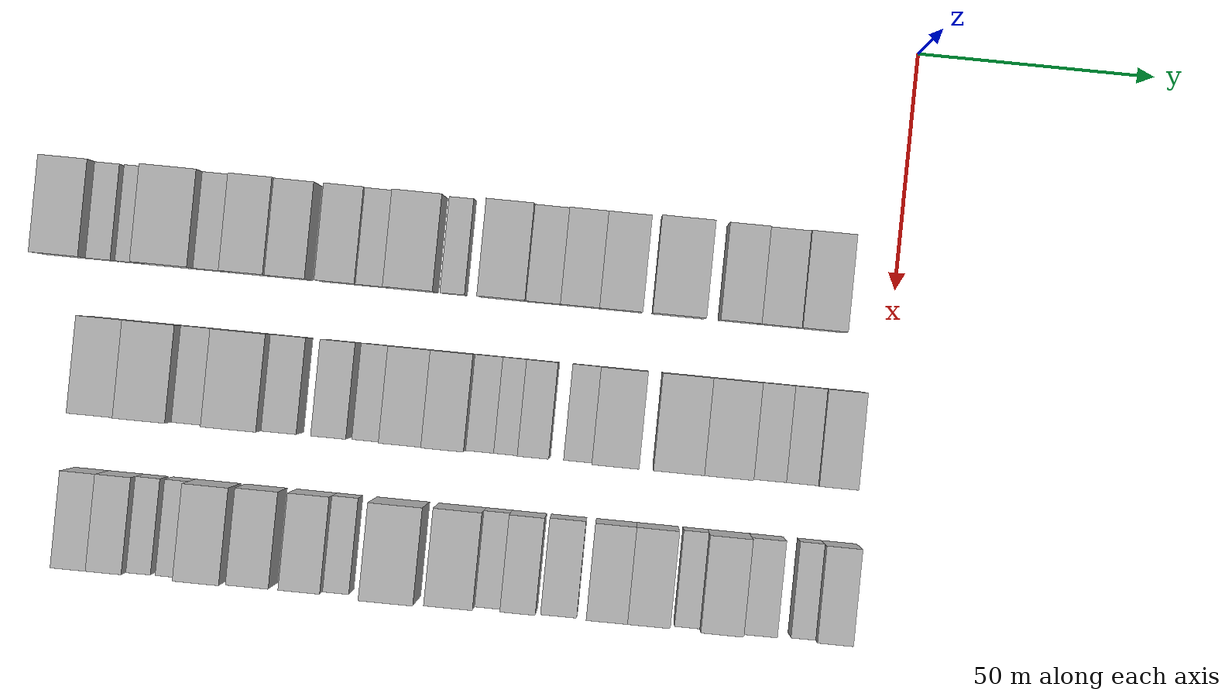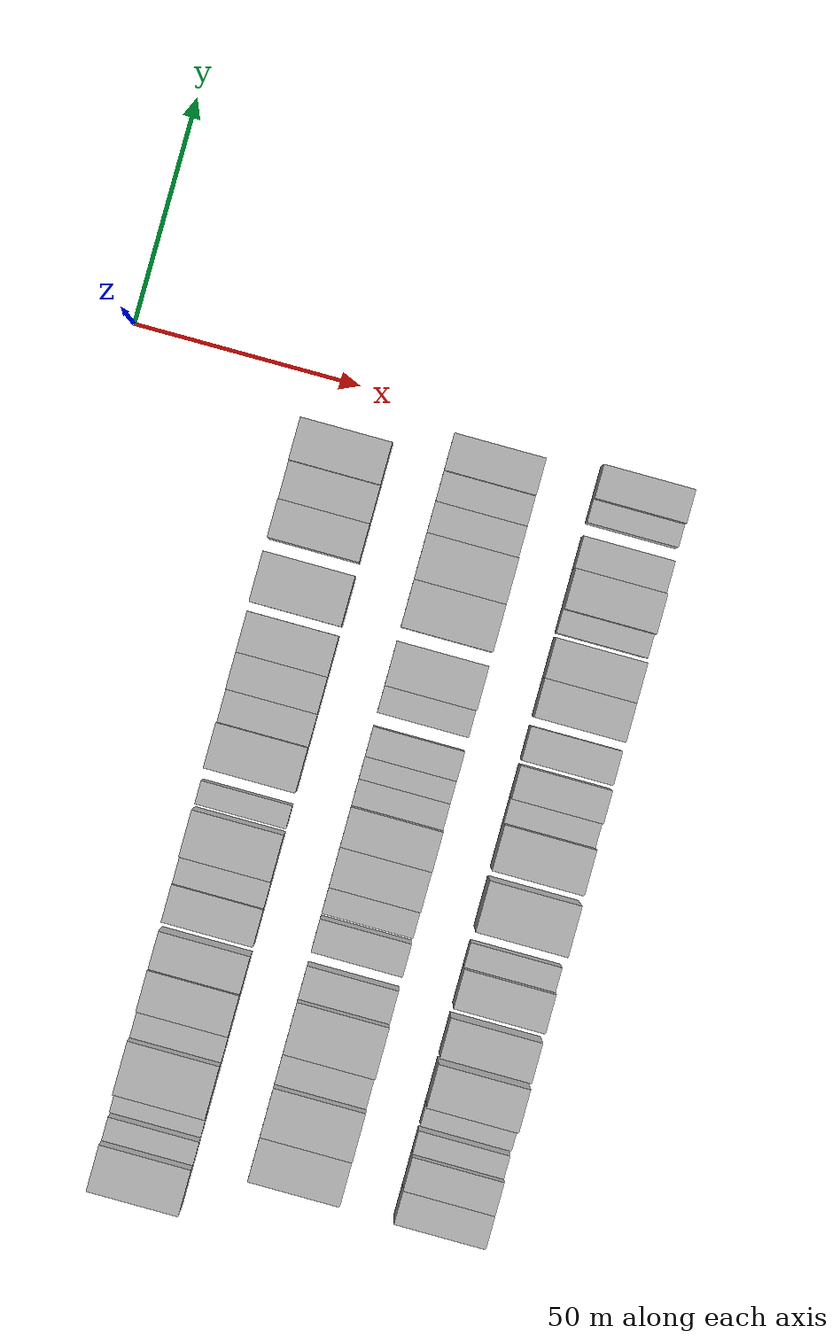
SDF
<sdf version="1.6">
 <world name="default">
  <model name="building_20">
   <static>1</static>
   <pose>50.0000 -173.5333 0 0.000000 0.000000 0.000000</pose>
   <link name="link">
    <pose>0 0 10.50 0 0 0</pose>
    <collision name="collision"><geometry><box><size>20.0000 10.1059 21.0000</size></box></geometry></collision>
    <visual name="visual">
     <cast_shadows>0</cast_shadows>
     <geometry><box><size>20.0000 10.1059 21.0000</size></box></geometry>
     <material>
      <script>
       <uri>model://HANNAS_wall/materials/scripts</uri>
       <uri>model://HANNAS_wall/materials/textures</uri>
       <name>vrc/HANNAS_wall</name>
      </script>
     </material>
    </visual>
   </link>
  </model>
  <model name="building_21">
   <static>1</static>
   <pose>50.0000 -165.9133 0 0.000000 0.000000 0.000000</pose>
   <link name="link">
    <pose>0 0 6.00 0 0 0</pose>
    <collision name="collision"><geometry><box><size>20.0000 5.1343 12.0000</size></box></geometry></collision>
    <visual name="visual">
     <cast_shadows>0</cast_shadows>
     <geometry><box><size>20.0000 5.1343 12.0000</size></box></geometry>
     <material>
      <script>
       <uri>model://HANNAS_wall/materials/scripts</uri>
       <uri>model://HANNAS_wall/materials/textures</uri>
       <name>vrc/HANNAS_wall</name>
      </script>
     </material>
    </visual>
   </link>
  </model>
  <model name="building_22">
   <static>1</static>
   <pose>50.0000 -159.8497 0 0.000000 0.000000 0.000000</pose>
   <link name="link">
    <pose>0 0 6.00 0 0 0</pose>
    <collision name="collision"><geometry><box><size>20.0000 4.9928 12.0000</size></box></geometry></collision>
    <visual name="visual">
     <cast_shadows>0</cast_shadows>
     <geometry><box><size>20.0000 4.9928 12.0000</size></box></geometry>
     <material>
      <script>
       <uri>model://HANNAS_wall/materials/scripts</uri>
       <uri>model://HANNAS_wall/materials/textures</uri>
       <name>vrc/HANNAS_wall</name>
      </script>
     </material>
    </visual>
   </link>
  </model>
  <model name="building_23">
   <static>1</static>
   <pose>50.0000 -151.5306 0 0.000000 0.000000 0.000000</pose>
   <link name="link">
    <pose>0 0 12.00 0 0 0</pose>
    <collision name="collision"><geometry><box><size>20.0000 11.6453 24.0000</size></box></geometry></collision>
    <visual name="visual">
     <cast_shadows>0</cast_shadows>
     <geometry><box><size>20.0000 11.6453 24.0000</size></box></geometry>
     <material>
      <script>
       <uri>model://HANNAS_wall/materials/scripts</uri>
       <uri>model://HANNAS_wall/materials/textures</uri>
       <name>vrc/HANNAS_wall</name>
      </script>
     </material>
    </visual>
   </link>
  </model>
  <model name="building_24">
   <static>1</static>
   <pose>50.0000 -142.6795 0 0.000000 0.000000 0.000000</pose>
   <link name="link">
    <pose>0 0 7.50 0 0 0</pose>
    <collision name="collision"><geometry><box><size>20.0000 6.0570 15.0000</size></box></geometry></collision>
    <visual name="visual">
     <cast_shadows>0</cast_shadows>
     <geometry><box><size>20.0000 6.0570 15.0000</size></box></geometry>
     <material>
      <script>
       <uri>model://HANNAS_wall/materials/scripts</uri>
       <uri>model://HANNAS_wall/materials/textures</uri>
       <name>vrc/HANNAS_wall</name>
      </script>
     </material>
    </visual>
   </link>
  </model>
  <model name="building_25">
   <static>1</static>
   <pose>50.0000 -135.1300 0 0.000000 0.000000 0.000000</pose>
   <link name="link">
    <pose>0 0 10.50 0 0 0</pose>
    <collision name="collision"><geometry><box><size>20.0000 9.0420 21.0000</size></box></geometry></collision>
    <visual name="visual">
     <cast_shadows>0</cast_shadows>
     <geometry><box><size>20.0000 9.0420 21.0000</size></box></geometry>
     <material>
      <script>
       <uri>model://HANNAS_wall/materials/scripts</uri>
       <uri>model://HANNAS_wall/materials/textures</uri>
       <name>vrc/HANNAS_wall</name>
      </script>
     </material>
    </visual>
   </link>
  </model>
  <model name="building_26">
   <static>1</static>
   <pose>50.0000 -126.4680 0 0.000000 0.000000 0.000000</pose>
   <link name="link">
    <pose>0 0 9.00 0 0 0</pose>
    <collision name="collision"><geometry><box><size>20.0000 8.2820 18.0000</size></box></geometry></collision>
    <visual name="visual">
     <cast_shadows>0</cast_shadows>
     <geometry><box><size>20.0000 8.2820 18.0000</size></box></geometry>
     <material>
      <script>
       <uri>model://HANNAS_wall/materials/scripts</uri>
       <uri>model://HANNAS_wall/materials/textures</uri>
       <name>vrc/HANNAS_wall</name>
      </script>
     </material>
    </visual>
   </link>
  </model>
  <model name="building_27">
   <static>1</static>
   <pose>50.0000 -116.2094 0 0.000000 0.000000 0.000000</pose>
   <link name="link">
    <pose>0 0 9.00 0 0 0</pose>
    <collision name="collision"><geometry><box><size>20.0000 8.2352 18.0000</size></box></geometry></collision>
    <visual name="visual">
     <cast_shadows>0</cast_shadows>
     <geometry><box><size>20.0000 8.2352 18.0000</size></box></geometry>
     <material>
      <script>
       <uri>model://HANNAS_wall/materials/scripts</uri>
       <uri>model://HANNAS_wall/materials/textures</uri>
       <name>vrc/HANNAS_wall</name>
      </script>
     </material>
    </visual>
   </link>
  </model>
  <model name="building_28">
   <static>1</static>
   <pose>50.0000 -109.0596 0 0.000000 0.000000 0.000000</pose>
   <link name="link">
    <pose>0 0 7.50 0 0 0</pose>
    <collision name="collision"><geometry><box><size>20.0000 6.0644 15.0000</size></box></geometry></collision>
    <visual name="visual">
     <cast_shadows>0</cast_shadows>
     <geometry><box><size>20.0000 6.0644 15.0000</size></box></geometry>
     <material>
      <script>
       <uri>model://HANNAS_wall/materials/scripts</uri>
       <uri>model://HANNAS_wall/materials/textures</uri>
       <name>vrc/HANNAS_wall</name>
      </script>
     </material>
    </visual>
   </link>
  </model>
  <model name="building_29">
   <static>1</static>
   <pose>50.0000 -100.9005 0 0.000000 0.000000 0.000000</pose>
   <link name="link">
    <pose>0 0 10.50 0 0 0</pose>
    <collision name="collision"><geometry><box><size>20.0000 10.2538 21.0000</size></box></geometry></collision>
    <visual name="visual">
     <cast_shadows>0</cast_shadows>
     <geometry><box><size>20.0000 10.2538 21.0000</size></box></geometry>
     <material>
      <script>
       <uri>model://HANNAS_wall/materials/scripts</uri>
       <uri>model://HANNAS_wall/materials/textures</uri>
       <name>vrc/HANNAS_wall</name>
      </script>
     </material>
    </visual>
   </link>
  </model>
  <model name="building_30">
   <static>1</static>
   <pose>50.0000 -92.2275 0 0.000000 0.000000 0.000000</pose>
   <link name="link">
    <pose>0 0 6.00 0 0 0</pose>
    <collision name="collision"><geometry><box><size>20.0000 5.0923 12.0000</size></box></geometry></collision>
    <visual name="visual">
     <cast_shadows>0</cast_shadows>
     <geometry><box><size>20.0000 5.0923 12.0000</size></box></geometry>
     <material>
      <script>
       <uri>model://HANNAS_wall/materials/scripts</uri>
       <uri>model://HANNAS_wall/materials/textures</uri>
       <name>vrc/HANNAS_wall</name>
      </script>
     </material>
    </visual>
   </link>
  </model>
  <model name="building_31">
   <static>1</static>
   <pose>50.0000 -81.7454 0 0.000000 0.000000 0.000000</pose>
   <link name="link">
    <pose>0 0 10.50 0 0 0</pose>
    <collision name="collision"><geometry><box><size>20.0000 9.8718 21.0000</size></box></geometry></collision>
    <visual name="visual">
     <cast_shadows>0</cast_shadows>
     <geometry><box><size>20.0000 9.8718 21.0000</size></box></geometry>
     <material>
      <script>
       <uri>model://HANNAS_wall/materials/scripts</uri>
       <uri>model://HANNAS_wall/materials/textures</uri>
       <name>vrc/HANNAS_wall</name>
      </script>
     </material>
    </visual>
   </link>
  </model>
  <model name="building_32">
   <static>1</static>
   <pose>50.0000 -73.2022 0 0.000000 0.000000 0.000000</pose>
   <link name="link">
    <pose>0 0 7.50 0 0 0</pose>
    <collision name="collision"><geometry><box><size>20.0000 7.2147 15.0000</size></box></geometry></collision>
    <visual name="visual">
     <cast_shadows>0</cast_shadows>
     <geometry><box><size>20.0000 7.2147 15.0000</size></box></geometry>
     <material>
      <script>
       <uri>model://HANNAS_wall/materials/scripts</uri>
       <uri>model://HANNAS_wall/materials/textures</uri>
       <name>vrc/HANNAS_wall</name>
      </script>
     </material>
    </visual>
   </link>
  </model>
  <model name="building_33">
   <static>1</static>
   <pose>50.0000 -65.5561 0 0.000000 0.000000 0.000000</pose>
   <link name="link">
    <pose>0 0 9.00 0 0 0</pose>
    <collision name="collision"><geometry><box><size>20.0000 8.0775 18.0000</size></box></geometry></collision>
    <visual name="visual">
     <cast_shadows>0</cast_shadows>
     <geometry><box><size>20.0000 8.0775 18.0000</size></box></geometry>
     <material>
      <script>
       <uri>model://HANNAS_wall/materials/scripts</uri>
       <uri>model://HANNAS_wall/materials/textures</uri>
       <name>vrc/HANNAS_wall</name>
      </script>
     </material>
    </visual>
   </link>
  </model>
  <model name="building_34">
   <static>1</static>
   <pose>50.0000 -57.0511 0 0.000000 0.000000 0.000000</pose>
   <link name="link">
    <pose>0 0 9.00 0 0 0</pose>
    <collision name="collision"><geometry><box><size>20.0000 8.9325 18.0000</size></box></geometry></collision>
    <visual name="visual">
     <cast_shadows>0</cast_shadows>
     <geometry><box><size>20.0000 8.9325 18.0000</size></box></geometry>
     <material>
      <script>
       <uri>model://HANNAS_wall/materials/scripts</uri>
       <uri>model://HANNAS_wall/materials/textures</uri>
       <name>vrc/HANNAS_wall</name>
      </script>
     </material>
    </visual>
   </link>
  </model>
  <model name="building_35">
   <static>1</static>
   <pose>50.0000 -45.0960 0 0.000000 0.000000 0.000000</pose>
   <link name="link">
    <pose>0 0 12.00 0 0 0</pose>
    <collision name="collision"><geometry><box><size>20.0000 10.9776 24.0000</size></box></geometry></collision>
    <visual name="visual">
     <cast_shadows>0</cast_shadows>
     <geometry><box><size>20.0000 10.9776 24.0000</size></box></geometry>
     <material>
      <script>
       <uri>model://HANNAS_wall/materials/scripts</uri>
       <uri>model://HANNAS_wall/materials/textures</uri>
       <name>vrc/HANNAS_wall</name>
      </script>
     </material>
    </visual>
   </link>
  </model>
  <model name="building_36">
   <static>1</static>
   <pose>50.0000 -32.4031 0 0.000000 0.000000 0.000000</pose>
   <link name="link">
    <pose>0 0 10.50 0 0 0</pose>
    <collision name="collision"><geometry><box><size>20.0000 8.4084 21.0000</size></box></geometry></collision>
    <visual name="visual">
     <cast_shadows>0</cast_shadows>
     <geometry><box><size>20.0000 8.4084 21.0000</size></box></geometry>
     <material>
      <script>
       <uri>model://HANNAS_wall/materials/scripts</uri>
       <uri>model://HANNAS_wall/materials/textures</uri>
       <name>vrc/HANNAS_wall</name>
      </script>
     </material>
    </visual>
   </link>
  </model>
  <model name="building_37">
   <static>1</static>
   <pose>50.0000 -23.9920 0 0.000000 0.000000 0.000000</pose>
   <link name="link">
    <pose>0 0 9.00 0 0 0</pose>
    <collision name="collision"><geometry><box><size>20.0000 8.4138 18.0000</size></box></geometry></collision>
    <visual name="visual">
     <cast_shadows>0</cast_shadows>
     <geometry><box><size>20.0000 8.4138 18.0000</size></box></geometry>
     <material>
      <script>
       <uri>model://HANNAS_wall/materials/scripts</uri>
       <uri>model://HANNAS_wall/materials/textures</uri>
       <name>vrc/HANNAS_wall</name>
      </script>
     </material>
    </visual>
   </link>
  </model>
  <model name="building_38">
   <static>1</static>
   <pose>50.0000 -15.1364 0 0.000000 0.000000 0.000000</pose>
   <link name="link">
    <pose>0 0 10.50 0 0 0</pose>
    <collision name="collision"><geometry><box><size>20.0000 9.2973 21.0000</size></box></geometry></collision>
    <visual name="visual">
     <cast_shadows>0</cast_shadows>
     <geometry><box><size>20.0000 9.2973 21.0000</size></box></geometry>
     <material>
      <script>
       <uri>model://HANNAS_wall/materials/scripts</uri>
       <uri>model://HANNAS_wall/materials/textures</uri>
       <name>vrc/HANNAS_wall</name>
      </script>
     </material>
    </visual>
   </link>
  </model>
  <model name="building_100">
   <static>1</static>
   <pose>82.0000 -162.7074 0 0.000000 0.000000 0.000000</pose>
   <link name="link">
    <pose>0 0 10.50 0 0 0</pose>
    <collision name="collision"><geometry><box><size>20.0000 9.9326 21.0000</size></box></geometry></collision>
    <visual name="visual">
     <cast_shadows>0</cast_shadows>
     <geometry><box><size>20.0000 9.9326 21.0000</size></box></geometry>
     <material>
      <script>
       <uri>model://HANNAS_wall/materials/scripts</uri>
       <uri>model://HANNAS_wall/materials/textures</uri>
       <name>vrc/HANNAS_wall</name>
      </script>
     </material>
    </visual>
   </link>
  </model>
  <model name="building_101">
   <static>1</static>
   <pose>82.0000 -152.3897 0 0.000000 0.000000 0.000000</pose>
   <link name="link">
    <pose>0 0 12.00 0 0 0</pose>
    <collision name="collision"><geometry><box><size>20.0000 10.7028 24.0000</size></box></geometry></collision>
    <visual name="visual">
     <cast_shadows>0</cast_shadows>
     <geometry><box><size>20.0000 10.7028 24.0000</size></box></geometry>
     <material>
      <script>
       <uri>model://HANNAS_wall/materials/scripts</uri>
       <uri>model://HANNAS_wall/materials/textures</uri>
       <name>vrc/HANNAS_wall</name>
      </script>
     </material>
    </visual>
   </link>
  </model>
  <model name="building_102">
   <static>1</static>
   <pose>82.0000 -143.3958 0 0.000000 0.000000 0.000000</pose>
   <link name="link">
    <pose>0 0 7.50 0 0 0</pose>
    <collision name="collision"><geometry><box><size>20.0000 7.2848 15.0000</size></box></geometry></collision>
    <visual name="visual">
     <cast_shadows>0</cast_shadows>
     <geometry><box><size>20.0000 7.2848 15.0000</size></box></geometry>
     <material>
      <script>
       <uri>model://HANNAS_wall/materials/scripts</uri>
       <uri>model://HANNAS_wall/materials/textures</uri>
       <name>vrc/HANNAS_wall</name>
      </script>
     </material>
    </visual>
   </link>
  </model>
  <model name="building_103">
   <static>1</static>
   <pose>82.0000 -134.1155 0 0.000000 0.000000 0.000000</pose>
   <link name="link">
    <pose>0 0 12.00 0 0 0</pose>
    <collision name="collision"><geometry><box><size>20.0000 11.2759 24.0000</size></box></geometry></collision>
    <visual name="visual">
     <cast_shadows>0</cast_shadows>
     <geometry><box><size>20.0000 11.2759 24.0000</size></box></geometry>
     <material>
      <script>
       <uri>model://HANNAS_wall/materials/scripts</uri>
       <uri>model://HANNAS_wall/materials/textures</uri>
       <name>vrc/HANNAS_wall</name>
      </script>
     </material>
    </visual>
   </link>
  </model>
  <model name="building_104">
   <static>1</static>
   <pose>82.0000 -124.8408 0 0.000000 0.000000 0.000000</pose>
   <link name="link">
    <pose>0 0 7.50 0 0 0</pose>
    <collision name="collision"><geometry><box><size>20.0000 7.2734 15.0000</size></box></geometry></collision>
    <visual name="visual">
     <cast_shadows>0</cast_shadows>
     <geometry><box><size>20.0000 7.2734 15.0000</size></box></geometry>
     <material>
      <script>
       <uri>model://HANNAS_wall/materials/scripts</uri>
       <uri>model://HANNAS_wall/materials/textures</uri>
       <name>vrc/HANNAS_wall</name>
      </script>
     </material>
    </visual>
   </link>
  </model>
  <model name="building_105">
   <static>1</static>
   <pose>82.0000 -114.5748 0 0.000000 0.000000 0.000000</pose>
   <link name="link">
    <pose>0 0 7.50 0 0 0</pose>
    <collision name="collision"><geometry><box><size>20.0000 7.2585 15.0000</size></box></geometry></collision>
    <visual name="visual">
     <cast_shadows>0</cast_shadows>
     <geometry><box><size>20.0000 7.2585 15.0000</size></box></geometry>
     <material>
      <script>
       <uri>model://HANNAS_wall/materials/scripts</uri>
       <uri>model://HANNAS_wall/materials/textures</uri>
       <name>vrc/HANNAS_wall</name>
      </script>
     </material>
    </visual>
   </link>
  </model>
  <model name="building_106">
   <static>1</static>
   <pose>82.0000 -106.9504 0 0.000000 0.000000 0.000000</pose>
   <link name="link">
    <pose>0 0 6.00 0 0 0</pose>
    <collision name="collision"><geometry><box><size>20.0000 5.9903 12.0000</size></box></geometry></collision>
    <visual name="visual">
     <cast_shadows>0</cast_shadows>
     <geometry><box><size>20.0000 5.9903 12.0000</size></box></geometry>
     <material>
      <script>
       <uri>model://HANNAS_wall/materials/scripts</uri>
       <uri>model://HANNAS_wall/materials/textures</uri>
       <name>vrc/HANNAS_wall</name>
      </script>
     </material>
    </visual>
   </link>
  </model>
  <model name="building_107">
   <static>1</static>
   <pose>82.0000 -99.4934 0 0.000000 0.000000 0.000000</pose>
   <link name="link">
    <pose>0 0 9.00 0 0 0</pose>
    <collision name="collision"><geometry><box><size>20.0000 8.9235 18.0000</size></box></geometry></collision>
    <visual name="visual">
     <cast_shadows>0</cast_shadows>
     <geometry><box><size>20.0000 8.9235 18.0000</size></box></geometry>
     <material>
      <script>
       <uri>model://HANNAS_wall/materials/scripts</uri>
       <uri>model://HANNAS_wall/materials/textures</uri>
       <name>vrc/HANNAS_wall</name>
      </script>
     </material>
    </visual>
   </link>
  </model>
  <model name="building_108">
   <static>1</static>
   <pose>82.0000 -90.6492 0 0.000000 0.000000 0.000000</pose>
   <link name="link">
    <pose>0 0 10.50 0 0 0</pose>
    <collision name="collision"><geometry><box><size>20.0000 8.7650 21.0000</size></box></geometry></collision>
    <visual name="visual">
     <cast_shadows>0</cast_shadows>
     <geometry><box><size>20.0000 8.7650 21.0000</size></box></geometry>
     <material>
      <script>
       <uri>model://HANNAS_wall/materials/scripts</uri>
       <uri>model://HANNAS_wall/materials/textures</uri>
       <name>vrc/HANNAS_wall</name>
      </script>
     </material>
    </visual>
   </link>
  </model>
  <model name="building_109">
   <static>1</static>
   <pose>82.0000 -83.3674 0 0.000000 0.000000 0.000000</pose>
   <link name="link">
    <pose>0 0 6.00 0 0 0</pose>
    <collision name="collision"><geometry><box><size>20.0000 5.7985 12.0000</size></box></geometry></collision>
    <visual name="visual">
     <cast_shadows>0</cast_shadows>
     <geometry><box><size>20.0000 5.7985 12.0000</size></box></geometry>
     <material>
      <script>
       <uri>model://HANNAS_wall/materials/scripts</uri>
       <uri>model://HANNAS_wall/materials/textures</uri>
       <name>vrc/HANNAS_wall</name>
      </script>
     </material>
    </visual>
   </link>
  </model>
  <model name="building_110">
   <static>1</static>
   <pose>82.0000 -77.9613 0 0.000000 0.000000 0.000000</pose>
   <link name="link">
    <pose>0 0 6.00 0 0 0</pose>
    <collision name="collision"><geometry><box><size>20.0000 5.0138 12.0000</size></box></geometry></collision>
    <visual name="visual">
     <cast_shadows>0</cast_shadows>
     <geometry><box><size>20.0000 5.0138 12.0000</size></box></geometry>
     <material>
      <script>
       <uri>model://HANNAS_wall/materials/scripts</uri>
       <uri>model://HANNAS_wall/materials/textures</uri>
       <name>vrc/HANNAS_wall</name>
      </script>
     </material>
    </visual>
   </link>
  </model>
  <model name="building_111">
   <static>1</static>
   <pose>82.0000 -72.1889 0 0.000000 0.000000 0.000000</pose>
   <link name="link">
    <pose>0 0 7.50 0 0 0</pose>
    <collision name="collision"><geometry><box><size>20.0000 6.5310 15.0000</size></box></geometry></collision>
    <visual name="visual">
     <cast_shadows>0</cast_shadows>
     <geometry><box><size>20.0000 6.5310 15.0000</size></box></geometry>
     <material>
      <script>
       <uri>model://HANNAS_wall/materials/scripts</uri>
       <uri>model://HANNAS_wall/materials/textures</uri>
       <name>vrc/HANNAS_wall</name>
      </script>
     </material>
    </visual>
   </link>
  </model>
  <model name="building_112">
   <static>1</static>
   <pose>82.0000 -62.9374 0 0.000000 0.000000 0.000000</pose>
   <link name="link">
    <pose>0 0 6.00 0 0 0</pose>
    <collision name="collision"><geometry><box><size>20.0000 5.9720 12.0000</size></box></geometry></collision>
    <visual name="visual">
     <cast_shadows>0</cast_shadows>
     <geometry><box><size>20.0000 5.9720 12.0000</size></box></geometry>
     <material>
      <script>
       <uri>model://HANNAS_wall/materials/scripts</uri>
       <uri>model://HANNAS_wall/materials/textures</uri>
       <name>vrc/HANNAS_wall</name>
      </script>
     </material>
    </visual>
   </link>
  </model>
  <model name="building_113">
   <static>1</static>
   <pose>82.0000 -55.1095 0 0.000000 0.000000 0.000000</pose>
   <link name="link">
    <pose>0 0 10.50 0 0 0</pose>
    <collision name="collision"><geometry><box><size>20.0000 9.6838 21.0000</size></box></geometry></collision>
    <visual name="visual">
     <cast_shadows>0</cast_shadows>
     <geometry><box><size>20.0000 9.6838 21.0000</size></box></geometry>
     <material>
      <script>
       <uri>model://HANNAS_wall/materials/scripts</uri>
       <uri>model://HANNAS_wall/materials/textures</uri>
       <name>vrc/HANNAS_wall</name>
      </script>
     </material>
    </visual>
   </link>
  </model>
  <model name="building_114">
   <static>1</static>
   <pose>82.0000 -42.0571 0 0.000000 0.000000 0.000000</pose>
   <link name="link">
    <pose>0 0 10.50 0 0 0</pose>
    <collision name="collision"><geometry><box><size>20.0000 10.4209 21.0000</size></box></geometry></collision>
    <visual name="visual">
     <cast_shadows>0</cast_shadows>
     <geometry><box><size>20.0000 10.4209 21.0000</size></box></geometry>
     <material>
      <script>
       <uri>model://HANNAS_wall/materials/scripts</uri>
       <uri>model://HANNAS_wall/materials/textures</uri>
       <name>vrc/HANNAS_wall</name>
      </script>
     </material>
    </visual>
   </link>
  </model>
  <model name="building_115">
   <static>1</static>
   <pose>82.0000 -31.7898 0 0.000000 0.000000 0.000000</pose>
   <link name="link">
    <pose>0 0 10.50 0 0 0</pose>
    <collision name="collision"><geometry><box><size>20.0000 10.1139 21.0000</size></box></geometry></collision>
    <visual name="visual">
     <cast_shadows>0</cast_shadows>
     <geometry><box><size>20.0000 10.1139 21.0000</size></box></geometry>
     <material>
      <script>
       <uri>model://HANNAS_wall/materials/scripts</uri>
       <uri>model://HANNAS_wall/materials/textures</uri>
       <name>vrc/HANNAS_wall</name>
      </script>
     </material>
    </visual>
   </link>
  </model>
  <model name="building_116">
   <static>1</static>
   <pose>82.0000 -23.2297 0 0.000000 0.000000 0.000000</pose>
   <link name="link">
    <pose>0 0 7.50 0 0 0</pose>
    <collision name="collision"><geometry><box><size>20.0000 7.0063 15.0000</size></box></geometry></collision>
    <visual name="visual">
     <cast_shadows>0</cast_shadows>
     <geometry><box><size>20.0000 7.0063 15.0000</size></box></geometry>
     <material>
      <script>
       <uri>model://HANNAS_wall/materials/scripts</uri>
       <uri>model://HANNAS_wall/materials/textures</uri>
       <name>vrc/HANNAS_wall</name>
      </script>
     </material>
    </visual>
   </link>
  </model>
  <model name="building_117">
   <static>1</static>
   <pose>82.0000 -16.4082 0 0.000000 0.000000 0.000000</pose>
   <link name="link">
    <pose>0 0 7.50 0 0 0</pose>
    <collision name="collision"><geometry><box><size>20.0000 6.6366 15.0000</size></box></geometry></collision>
    <visual name="visual">
     <cast_shadows>0</cast_shadows>
     <geometry><box><size>20.0000 6.6366 15.0000</size></box></geometry>
     <material>
      <script>
       <uri>model://HANNAS_wall/materials/scripts</uri>
       <uri>model://HANNAS_wall/materials/textures</uri>
       <name>vrc/HANNAS_wall</name>
      </script>
     </material>
    </visual>
   </link>
  </model>
  <model name="building_118">
   <static>1</static>
   <pose>82.0000 -9.0263 0 0.000000 0.000000 0.000000</pose>
   <link name="link">
    <pose>0 0 9.00 0 0 0</pose>
    <collision name="collision"><geometry><box><size>20.0000 8.1273 18.0000</size></box></geometry></collision>
    <visual name="visual">
     <cast_shadows>0</cast_shadows>
     <geometry><box><size>20.0000 8.1273 18.0000</size></box></geometry>
     <material>
      <script>
       <uri>model://HANNAS_wall/materials/scripts</uri>
       <uri>model://HANNAS_wall/materials/textures</uri>
       <name>vrc/HANNAS_wall</name>
      </script>
     </material>
    </visual>
   </link>
  </model>
  <model name="building_177">
   <static>1</static>
   <pose>114.0000 -164.7899 0 0.000000 0.000000 0.000000</pose>
   <link name="link">
    <pose>0 0 9.00 0 0 0</pose>
    <collision name="collision"><geometry><box><size>20.0000 7.2348 18.0000</size></box></geometry></collision>
    <visual name="visual">
     <cast_shadows>0</cast_shadows>
     <geometry><box><size>20.0000 7.2348 18.0000</size></box></geometry>
     <material>
      <script>
       <uri>model://HANNAS_wall/materials/scripts</uri>
       <uri>model://HANNAS_wall/materials/textures</uri>
       <name>vrc/HANNAS_wall</name>
      </script>
     </material>
    </visual>
   </link>
  </model>
  <model name="building_178">
   <static>1</static>
   <pose>114.0000 -157.4743 0 0.000000 0.000000 0.000000</pose>
   <link name="link">
    <pose>0 0 9.00 0 0 0</pose>
    <collision name="collision"><geometry><box><size>20.0000 7.3965 18.0000</size></box></geometry></collision>
    <visual name="visual">
     <cast_shadows>0</cast_shadows>
     <geometry><box><size>20.0000 7.3965 18.0000</size></box></geometry>
     <material>
      <script>
       <uri>model://HANNAS_wall/materials/scripts</uri>
       <uri>model://HANNAS_wall/materials/textures</uri>
       <name>vrc/HANNAS_wall</name>
      </script>
     </material>
    </visual>
   </link>
  </model>
  <model name="building_179">
   <static>1</static>
   <pose>114.0000 -151.2237 0 0.000000 0.000000 0.000000</pose>
   <link name="link">
    <pose>0 0 6.00 0 0 0</pose>
    <collision name="collision"><geometry><box><size>20.0000 5.1047 12.0000</size></box></geometry></collision>
    <visual name="visual">
     <cast_shadows>0</cast_shadows>
     <geometry><box><size>20.0000 5.1047 12.0000</size></box></geometry>
     <material>
      <script>
       <uri>model://HANNAS_wall/materials/scripts</uri>
       <uri>model://HANNAS_wall/materials/textures</uri>
       <name>vrc/HANNAS_wall</name>
      </script>
     </material>
    </visual>
   </link>
  </model>
  <model name="building_180">
   <static>1</static>
   <pose>114.0000 -145.2363 0 0.000000 0.000000 0.000000</pose>
   <link name="link">
    <pose>0 0 6.00 0 0 0</pose>
    <collision name="collision"><geometry><box><size>20.0000 4.8700 12.0000</size></box></geometry></collision>
    <visual name="visual">
     <cast_shadows>0</cast_shadows>
     <geometry><box><size>20.0000 4.8700 12.0000</size></box></geometry>
     <material>
      <script>
       <uri>model://HANNAS_wall/materials/scripts</uri>
       <uri>model://HANNAS_wall/materials/textures</uri>
       <name>vrc/HANNAS_wall</name>
      </script>
     </material>
    </visual>
   </link>
  </model>
  <model name="building_181">
   <static>1</static>
   <pose>114.0000 -138.0549 0 0.000000 0.000000 0.000000</pose>
   <link name="link">
    <pose>0 0 10.50 0 0 0</pose>
    <collision name="collision"><geometry><box><size>20.0000 9.4929 21.0000</size></box></geometry></collision>
    <visual name="visual">
     <cast_shadows>0</cast_shadows>
     <geometry><box><size>20.0000 9.4929 21.0000</size></box></geometry>
     <material>
      <script>
       <uri>model://HANNAS_wall/materials/scripts</uri>
       <uri>model://HANNAS_wall/materials/textures</uri>
       <name>vrc/HANNAS_wall</name>
      </script>
     </material>
    </visual>
   </link>
  </model>
  <model name="building_182">
   <static>1</static>
   <pose>114.0000 -127.8961 0 0.000000 0.000000 0.000000</pose>
   <link name="link">
    <pose>0 0 9.00 0 0 0</pose>
    <collision name="collision"><geometry><box><size>20.0000 8.8248 18.0000</size></box></geometry></collision>
    <visual name="visual">
     <cast_shadows>0</cast_shadows>
     <geometry><box><size>20.0000 8.8248 18.0000</size></box></geometry>
     <material>
      <script>
       <uri>model://HANNAS_wall/materials/scripts</uri>
       <uri>model://HANNAS_wall/materials/textures</uri>
       <name>vrc/HANNAS_wall</name>
      </script>
     </material>
    </visual>
   </link>
  </model>
  <model name="building_183">
   <static>1</static>
   <pose>114.0000 -117.1892 0 0.000000 0.000000 0.000000</pose>
   <link name="link">
    <pose>0 0 9.00 0 0 0</pose>
    <collision name="collision"><geometry><box><size>20.0000 8.5889 18.0000</size></box></geometry></collision>
    <visual name="visual">
     <cast_shadows>0</cast_shadows>
     <geometry><box><size>20.0000 8.5889 18.0000</size></box></geometry>
     <material>
      <script>
       <uri>model://HANNAS_wall/materials/scripts</uri>
       <uri>model://HANNAS_wall/materials/textures</uri>
       <name>vrc/HANNAS_wall</name>
      </script>
     </material>
    </visual>
   </link>
  </model>
  <model name="building_184">
   <static>1</static>
   <pose>114.0000 -110.1707 0 0.000000 0.000000 0.000000</pose>
   <link name="link">
    <pose>0 0 6.00 0 0 0</pose>
    <collision name="collision"><geometry><box><size>20.0000 5.4480 12.0000</size></box></geometry></collision>
    <visual name="visual">
     <cast_shadows>0</cast_shadows>
     <geometry><box><size>20.0000 5.4480 12.0000</size></box></geometry>
     <material>
      <script>
       <uri>model://HANNAS_wall/materials/scripts</uri>
       <uri>model://HANNAS_wall/materials/textures</uri>
       <name>vrc/HANNAS_wall</name>
      </script>
     </material>
    </visual>
   </link>
  </model>
  <model name="building_185">
   <static>1</static>
   <pose>114.0000 -98.8731 0 0.000000 0.000000 0.000000</pose>
   <link name="link">
    <pose>0 0 12.00 0 0 0</pose>
    <collision name="collision"><geometry><box><size>20.0000 11.1471 24.0000</size></box></geometry></collision>
    <visual name="visual">
     <cast_shadows>0</cast_shadows>
     <geometry><box><size>20.0000 11.1471 24.0000</size></box></geometry>
     <material>
      <script>
       <uri>model://HANNAS_wall/materials/scripts</uri>
       <uri>model://HANNAS_wall/materials/textures</uri>
       <name>vrc/HANNAS_wall</name>
      </script>
     </material>
    </visual>
   </link>
  </model>
  <model name="building_186">
   <static>1</static>
   <pose>114.0000 -86.2963 0 0.000000 0.000000 0.000000</pose>
   <link name="link">
    <pose>0 0 10.50 0 0 0</pose>
    <collision name="collision"><geometry><box><size>20.0000 10.0066 21.0000</size></box></geometry></collision>
    <visual name="visual">
     <cast_shadows>0</cast_shadows>
     <geometry><box><size>20.0000 10.0066 21.0000</size></box></geometry>
     <material>
      <script>
       <uri>model://HANNAS_wall/materials/scripts</uri>
       <uri>model://HANNAS_wall/materials/textures</uri>
       <name>vrc/HANNAS_wall</name>
      </script>
     </material>
    </visual>
   </link>
  </model>
  <model name="building_187">
   <static>1</static>
   <pose>114.0000 -78.5472 0 0.000000 0.000000 0.000000</pose>
   <link name="link">
    <pose>0 0 6.00 0 0 0</pose>
    <collision name="collision"><geometry><box><size>20.0000 5.4916 12.0000</size></box></geometry></collision>
    <visual name="visual">
     <cast_shadows>0</cast_shadows>
     <geometry><box><size>20.0000 5.4916 12.0000</size></box></geometry>
     <material>
      <script>
       <uri>model://HANNAS_wall/materials/scripts</uri>
       <uri>model://HANNAS_wall/materials/textures</uri>
       <name>vrc/HANNAS_wall</name>
      </script>
     </material>
    </visual>
   </link>
  </model>
  <model name="building_188">
   <static>1</static>
   <pose>114.0000 -72.1504 0 0.000000 0.000000 0.000000</pose>
   <link name="link">
    <pose>0 0 9.00 0 0 0</pose>
    <collision name="collision"><geometry><box><size>20.0000 7.3020 18.0000</size></box></geometry></collision>
    <visual name="visual">
     <cast_shadows>0</cast_shadows>
     <geometry><box><size>20.0000 7.3020 18.0000</size></box></geometry>
     <material>
      <script>
       <uri>model://HANNAS_wall/materials/scripts</uri>
       <uri>model://HANNAS_wall/materials/textures</uri>
       <name>vrc/HANNAS_wall</name>
      </script>
     </material>
    </visual>
   </link>
  </model>
  <model name="building_189">
   <static>1</static>
   <pose>114.0000 -63.7577 0 0.000000 0.000000 0.000000</pose>
   <link name="link">
    <pose>0 0 7.50 0 0 0</pose>
    <collision name="collision"><geometry><box><size>20.0000 7.4834 15.0000</size></box></geometry></collision>
    <visual name="visual">
     <cast_shadows>0</cast_shadows>
     <geometry><box><size>20.0000 7.4834 15.0000</size></box></geometry>
     <material>
      <script>
       <uri>model://HANNAS_wall/materials/scripts</uri>
       <uri>model://HANNAS_wall/materials/textures</uri>
       <name>vrc/HANNAS_wall</name>
      </script>
     </material>
    </visual>
   </link>
  </model>
  <model name="building_190">
   <static>1</static>
   <pose>114.0000 -53.7522 0 0.000000 0.000000 0.000000</pose>
   <link name="link">
    <pose>0 0 9.00 0 0 0</pose>
    <collision name="collision"><geometry><box><size>20.0000 8.5275 18.0000</size></box></geometry></collision>
    <visual name="visual">
     <cast_shadows>0</cast_shadows>
     <geometry><box><size>20.0000 8.5275 18.0000</size></box></geometry>
     <material>
      <script>
       <uri>model://HANNAS_wall/materials/scripts</uri>
       <uri>model://HANNAS_wall/materials/textures</uri>
       <name>vrc/HANNAS_wall</name>
      </script>
     </material>
    </visual>
   </link>
  </model>
  <model name="building_191">
   <static>1</static>
   <pose>114.0000 -45.0853 0 0.000000 0.000000 0.000000</pose>
   <link name="link">
    <pose>0 0 9.00 0 0 0</pose>
    <collision name="collision"><geometry><box><size>20.0000 8.8065 18.0000</size></box></geometry></collision>
    <visual name="visual">
     <cast_shadows>0</cast_shadows>
     <geometry><box><size>20.0000 8.8065 18.0000</size></box></geometry>
     <material>
      <script>
       <uri>model://HANNAS_wall/materials/scripts</uri>
       <uri>model://HANNAS_wall/materials/textures</uri>
       <name>vrc/HANNAS_wall</name>
      </script>
     </material>
    </visual>
   </link>
  </model>
  <model name="building_192">
   <static>1</static>
   <pose>114.0000 -37.0640 0 0.000000 0.000000 0.000000</pose>
   <link name="link">
    <pose>0 0 6.00 0 0 0</pose>
    <collision name="collision"><geometry><box><size>20.0000 5.2361 12.0000</size></box></geometry></collision>
    <visual name="visual">
     <cast_shadows>0</cast_shadows>
     <geometry><box><size>20.0000 5.2361 12.0000</size></box></geometry>
     <material>
      <script>
       <uri>model://HANNAS_wall/materials/scripts</uri>
       <uri>model://HANNAS_wall/materials/textures</uri>
       <name>vrc/HANNAS_wall</name>
      </script>
     </material>
    </visual>
   </link>
  </model>
  <model name="building_193">
   <static>1</static>
   <pose>114.0000 -30.0367 0 0.000000 0.000000 0.000000</pose>
   <link name="link">
    <pose>0 0 10.50 0 0 0</pose>
    <collision name="collision"><geometry><box><size>20.0000 8.8183 21.0000</size></box></geometry></collision>
    <visual name="visual">
     <cast_shadows>0</cast_shadows>
     <geometry><box><size>20.0000 8.8183 21.0000</size></box></geometry>
     <material>
      <script>
       <uri>model://HANNAS_wall/materials/scripts</uri>
       <uri>model://HANNAS_wall/materials/textures</uri>
       <name>vrc/HANNAS_wall</name>
      </script>
     </material>
    </visual>
   </link>
  </model>
  <model name="building_194">
   <static>1</static>
   <pose>114.0000 -22.0496 0 0.000000 0.000000 0.000000</pose>
   <link name="link">
    <pose>0 0 7.50 0 0 0</pose>
    <collision name="collision"><geometry><box><size>20.0000 7.1559 15.0000</size></box></geometry></collision>
    <visual name="visual">
     <cast_shadows>0</cast_shadows>
     <geometry><box><size>20.0000 7.1559 15.0000</size></box></geometry>
     <material>
      <script>
       <uri>model://HANNAS_wall/materials/scripts</uri>
       <uri>model://HANNAS_wall/materials/textures</uri>
       <name>vrc/HANNAS_wall</name>
      </script>
     </material>
    </visual>
   </link>
  </model>
  <model name="building_195">
   <static>1</static>
   <pose>114.0000 -12.9092 0 0.000000 0.000000 0.000000</pose>
   <link name="link">
    <pose>0 0 6.00 0 0 0</pose>
    <collision name="collision"><geometry><box><size>20.0000 5.1250 12.0000</size></box></geometry></collision>
    <visual name="visual">
     <cast_shadows>0</cast_shadows>
     <geometry><box><size>20.0000 5.1250 12.0000</size></box></geometry>
     <material>
      <script>
       <uri>model://HANNAS_wall/materials/scripts</uri>
       <uri>model://HANNAS_wall/materials/textures</uri>
       <name>vrc/HANNAS_wall</name>
      </script>
     </material>
    </visual>
   </link>
  </model>
  <model name="building_196">
   <static>1</static>
   <pose>114.0000 -6.6455 0 0.000000 0.000000 0.000000</pose>
   <link name="link">
    <pose>0 0 9.00 0 0 0</pose>
    <collision name="collision"><geometry><box><size>20.0000 7.4023 18.0000</size></box></geometry></collision>
    <visual name="visual">
     <cast_shadows>0</cast_shadows>
     <geometry><box><size>20.0000 7.4023 18.0000</size></box></geometry>
     <material>
      <script>
       <uri>model://HANNAS_wall/materials/scripts</uri>
       <uri>model://HANNAS_wall/materials/textures</uri>
       <name>vrc/HANNAS_wall</name>
      </script>
     </material>
    </visual>
   </link>
  </model>
 </world>
</sdf>
